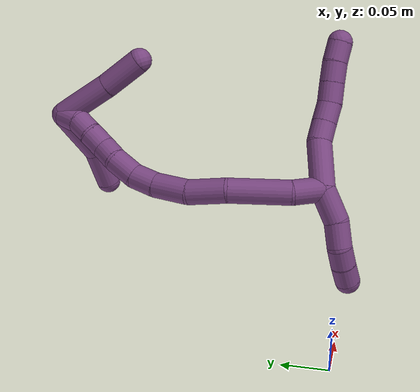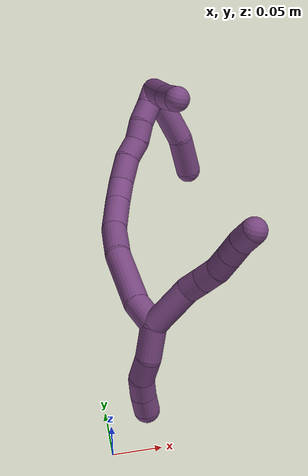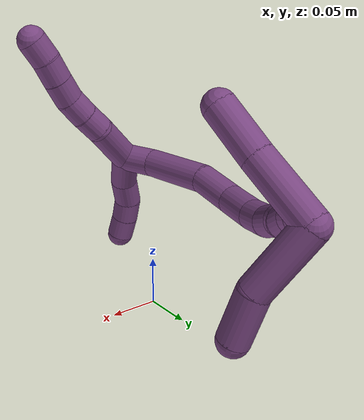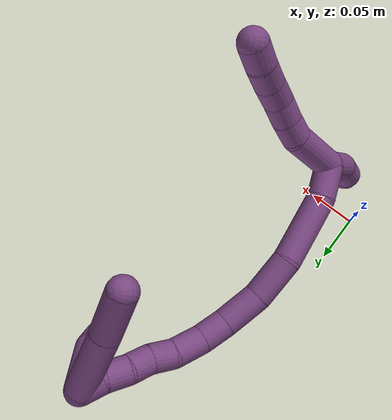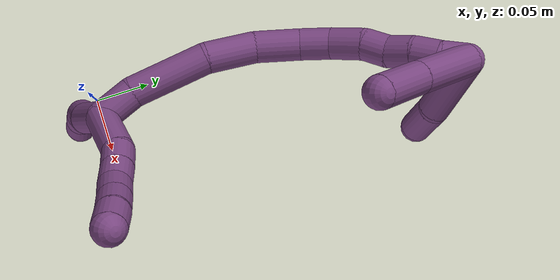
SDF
<sdf version="1.7">
 <world name="default">
  <model name="20">
   <static>0</static>
   <link name="20">
    <collision name="collision-cylinder-e_1_2_8">
     <pose>0.008928 -0.005448 0.021812 0.244774 0.378029 0.047051</pose>
     <geometry><cylinder><radius>0.0125</radius><length>0.04838</length></cylinder></geometry>
     <surface>
      <friction><ode><mu>1.16</mu><mu2>1.16</mu2><slip1>0</slip1><slip2>0</slip2></ode></friction>
      <contact><ode><kp>1e+06</kp><kd>1</kd><max_vel>0</max_vel><min_depth>0.001</min_depth></ode></contact>
     </surface>
    </collision>
    <visual name="visual-cylinder-e_1_2_8">
     <pose>0.008928 -0.005448 0.021812 0.244774 0.378029 0.047051</pose>
     <geometry><cylinder><radius>0.0125</radius><length>0.04838</length></cylinder></geometry>
     <material><ambient>0.478431 0.278431 0.509804 1</ambient></material>
    </visual>
    <collision name="collision-cylinder-e_2_8_9">
     <pose>0.021381 -0.016011 0.051505 0.575657 0.358822 0.107281</pose>
     <geometry><cylinder><radius>0.0125</radius><length>0.02007</length></cylinder></geometry>
     <surface>
      <friction><ode><mu>1.16</mu><mu2>1.16</mu2><slip1>0</slip1><slip2>0</slip2></ode></friction>
      <contact><ode><kp>1e+06</kp><kd>1</kd><max_vel>0</max_vel><min_depth>0.001</min_depth></ode></contact>
     </surface>
    </collision>
    <visual name="visual-cylinder-e_2_8_9">
     <pose>0.021381 -0.016011 0.051505 0.575657 0.358822 0.107281</pose>
     <geometry><cylinder><radius>0.0125</radius><length>0.02007</length></cylinder></geometry>
     <material><ambient>0.478431 0.278431 0.509804 1</ambient></material>
    </visual>
    <collision name="collision-cylinder-e_3_9_10">
     <pose>0.027798 -0.026658 0.067371 0.605948 0.289568 0.091093</pose>
     <geometry><cylinder><radius>0.0125</radius><length>0.02027</length></cylinder></geometry>
     <surface>
      <friction><ode><mu>1.16</mu><mu2>1.16</mu2><slip1>0</slip1><slip2>0</slip2></ode></friction>
      <contact><ode><kp>1e+06</kp><kd>1</kd><max_vel>0</max_vel><min_depth>0.001</min_depth></ode></contact>
     </surface>
    </collision>
    <visual name="visual-cylinder-e_3_9_10">
     <pose>0.027798 -0.026658 0.067371 0.605948 0.289568 0.091093</pose>
     <geometry><cylinder><radius>0.0125</radius><length>0.02027</length></cylinder></geometry>
     <material><ambient>0.478431 0.278431 0.509804 1</ambient></material>
    </visual>
    <collision name="collision-cylinder-e_4_10_11">
     <pose>0.032028 -0.036725 0.084612 0.455513 0.128862 0.029907</pose>
     <geometry><cylinder><radius>0.0125</radius><length>0.020788</length></cylinder></geometry>
     <surface>
      <friction><ode><mu>1.16</mu><mu2>1.16</mu2><slip1>0</slip1><slip2>0</slip2></ode></friction>
      <contact><ode><kp>1e+06</kp><kd>1</kd><max_vel>0</max_vel><min_depth>0.001</min_depth></ode></contact>
     </surface>
    </collision>
    <visual name="visual-cylinder-e_4_10_11">
     <pose>0.032028 -0.036725 0.084612 0.455513 0.128862 0.029907</pose>
     <geometry><cylinder><radius>0.0125</radius><length>0.020788</length></cylinder></geometry>
     <material><ambient>0.478431 0.278431 0.509804 1</ambient></material>
    </visual>
    <collision name="collision-cylinder-e_5_11_12">
     <pose>0.034298 -0.045961 0.10289 0.480349 0.091531 0.022431</pose>
     <geometry><cylinder><radius>0.0125</radius><length>0.020431</length></cylinder></geometry>
     <surface>
      <friction><ode><mu>1.16</mu><mu2>1.16</mu2><slip1>0</slip1><slip2>0</slip2></ode></friction>
      <contact><ode><kp>1e+06</kp><kd>1</kd><max_vel>0</max_vel><min_depth>0.001</min_depth></ode></contact>
     </surface>
    </collision>
    <visual name="visual-cylinder-e_5_11_12">
     <pose>0.034298 -0.045961 0.10289 0.480349 0.091531 0.022431</pose>
     <geometry><cylinder><radius>0.0125</radius><length>0.020431</length></cylinder></geometry>
     <material><ambient>0.478431 0.278431 0.509804 1</ambient></material>
    </visual>
    <collision name="collision-cylinder-e_6_12_6">
     <pose>0.036878 -0.056192 0.120116 0.593098 0.164927 0.050499</pose>
     <geometry><cylinder><radius>0.0125</radius><length>0.02006</length></cylinder></geometry>
     <surface>
      <friction><ode><mu>1.16</mu><mu2>1.16</mu2><slip1>0</slip1><slip2>0</slip2></ode></friction>
      <contact><ode><kp>1e+06</kp><kd>1</kd><max_vel>0</max_vel><min_depth>0.001</min_depth></ode></contact>
     </surface>
    </collision>
    <visual name="visual-cylinder-e_6_12_6">
     <pose>0.036878 -0.056192 0.120116 0.593098 0.164927 0.050499</pose>
     <geometry><cylinder><radius>0.0125</radius><length>0.02006</length></cylinder></geometry>
     <material><ambient>0.478431 0.278431 0.509804 1</ambient></material>
    </visual>
    <collision name="collision-cylinder-e_1_2_13">
     <pose>0.001607 -0.000804 -0.016939 3.09414 0.094457 2.21101</pose>
     <geometry><cylinder><radius>0.0125</radius><length>0.034067</length></cylinder></geometry>
     <surface>
      <friction><ode><mu>1.16</mu><mu2>1.16</mu2><slip1>0</slip1><slip2>0</slip2></ode></friction>
      <contact><ode><kp>1e+06</kp><kd>1</kd><max_vel>0</max_vel><min_depth>0.001</min_depth></ode></contact>
     </surface>
    </collision>
    <visual name="visual-cylinder-e_1_2_13">
     <pose>0.001607 -0.000804 -0.016939 3.09414 0.094457 2.21101</pose>
     <geometry><cylinder><radius>0.0125</radius><length>0.034067</length></cylinder></geometry>
     <material><ambient>0.478431 0.278431 0.509804 1</ambient></material>
    </visual>
    <collision name="collision-cylinder-e_2_13_14">
     <pose>0.004127 0.001327 -0.046352 -2.91051 0.071182 -0.595364</pose>
     <geometry><cylinder><radius>0.0125</radius><length>0.025697</length></cylinder></geometry>
     <surface>
      <friction><ode><mu>1.16</mu><mu2>1.16</mu2><slip1>0</slip1><slip2>0</slip2></ode></friction>
      <contact><ode><kp>1e+06</kp><kd>1</kd><max_vel>0</max_vel><min_depth>0.001</min_depth></ode></contact>
     </surface>
    </collision>
    <visual name="visual-cylinder-e_2_13_14">
     <pose>0.004127 0.001327 -0.046352 -2.91051 0.071182 -0.595364</pose>
     <geometry><cylinder><radius>0.0125</radius><length>0.025697</length></cylinder></geometry>
     <material><ambient>0.478431 0.278431 0.509804 1</ambient></material>
    </visual>
    <collision name="collision-cylinder-e_3_14_15">
     <pose>0.009026 0.005867 -0.067964 -2.9677 0.405791 -2.34007</pose>
     <geometry><cylinder><radius>0.0125</radius><length>0.020193</length></cylinder></geometry>
     <surface>
      <friction><ode><mu>1.16</mu><mu2>1.16</mu2><slip1>0</slip1><slip2>0</slip2></ode></friction>
      <contact><ode><kp>1e+06</kp><kd>1</kd><max_vel>0</max_vel><min_depth>0.001</min_depth></ode></contact>
     </surface>
    </collision>
    <visual name="visual-cylinder-e_3_14_15">
     <pose>0.009026 0.005867 -0.067964 -2.9677 0.405791 -2.34007</pose>
     <geometry><cylinder><radius>0.0125</radius><length>0.020193</length></cylinder></geometry>
     <material><ambient>0.478431 0.278431 0.509804 1</ambient></material>
    </visual>
    <collision name="collision-cylinder-e_4_15_5">
     <pose>0.017758 0.008654 -0.085848 -3.00719 0.493355 -2.61925</pose>
     <geometry><cylinder><radius>0.0125</radius><length>0.020043</length></cylinder></geometry>
     <surface>
      <friction><ode><mu>1.16</mu><mu2>1.16</mu2><slip1>0</slip1><slip2>0</slip2></ode></friction>
      <contact><ode><kp>1e+06</kp><kd>1</kd><max_vel>0</max_vel><min_depth>0.001</min_depth></ode></contact>
     </surface>
    </collision>
    <visual name="visual-cylinder-e_4_15_5">
     <pose>0.017758 0.008654 -0.085848 -3.00719 0.493355 -2.61925</pose>
     <geometry><cylinder><radius>0.0125</radius><length>0.020043</length></cylinder></geometry>
     <material><ambient>0.478431 0.278431 0.509804 1</ambient></material>
    </visual>
    <collision name="collision-cylinder-e_1_2_16">
     <pose>-0.005 0.013973 0.003647 -1.3155 -0.333297 0.258437</pose>
     <geometry><cylinder><radius>0.0125</radius><length>0.030564</length></cylinder></geometry>
     <surface>
      <friction><ode><mu>1.16</mu><mu2>1.16</mu2><slip1>0</slip1><slip2>0</slip2></ode></friction>
      <contact><ode><kp>1e+06</kp><kd>1</kd><max_vel>0</max_vel><min_depth>0.001</min_depth></ode></contact>
     </surface>
    </collision>
    <visual name="visual-cylinder-e_1_2_16">
     <pose>-0.005 0.013973 0.003647 -1.3155 -0.333297 0.258437</pose>
     <geometry><cylinder><radius>0.0125</radius><length>0.030564</length></cylinder></geometry>
     <material><ambient>0.478431 0.278431 0.509804 1</ambient></material>
    </visual>
    <collision name="collision-cylinder-e_2_16_17">
     <pose>-0.013464 0.056537 0.018848 -1.18674 -0.111875 0.075496</pose>
     <geometry><cylinder><radius>0.0125</radius><length>0.062064</length></cylinder></geometry>
     <surface>
      <friction><ode><mu>1.16</mu><mu2>1.16</mu2><slip1>0</slip1><slip2>0</slip2></ode></friction>
      <contact><ode><kp>1e+06</kp><kd>1</kd><max_vel>0</max_vel><min_depth>0.001</min_depth></ode></contact>
     </surface>
    </collision>
    <visual name="visual-cylinder-e_2_16_17">
     <pose>-0.013464 0.056537 0.018848 -1.18674 -0.111875 0.075496</pose>
     <geometry><cylinder><radius>0.0125</radius><length>0.062064</length></cylinder></geometry>
     <material><ambient>0.478431 0.278431 0.509804 1</ambient></material>
    </visual>
    <collision name="collision-cylinder-e_3_17_18">
     <pose>-0.014483 0.103845 0.035965 -1.28192 0.124578 -0.092993</pose>
     <geometry><cylinder><radius>0.0125</radius><length>0.039355</length></cylinder></geometry>
     <surface>
      <friction><ode><mu>1.16</mu><mu2>1.16</mu2><slip1>0</slip1><slip2>0</slip2></ode></friction>
      <contact><ode><kp>1e+06</kp><kd>1</kd><max_vel>0</max_vel><min_depth>0.001</min_depth></ode></contact>
     </surface>
    </collision>
    <visual name="visual-cylinder-e_3_17_18">
     <pose>-0.014483 0.103845 0.035965 -1.28192 0.124578 -0.092993</pose>
     <geometry><cylinder><radius>0.0125</radius><length>0.039355</length></cylinder></geometry>
     <material><ambient>0.478431 0.278431 0.509804 1</ambient></material>
    </visual>
    <collision name="collision-cylinder-e_4_18_19">
     <pose>-0.007754 0.137518 0.050246 -1.04305 0.242587 -0.139847</pose>
     <geometry><cylinder><radius>0.0125</radius><length>0.03567</length></cylinder></geometry>
     <surface>
      <friction><ode><mu>1.16</mu><mu2>1.16</mu2><slip1>0</slip1><slip2>0</slip2></ode></friction>
      <contact><ode><kp>1e+06</kp><kd>1</kd><max_vel>0</max_vel><min_depth>0.001</min_depth></ode></contact>
     </surface>
    </collision>
    <visual name="visual-cylinder-e_4_18_19">
     <pose>-0.007754 0.137518 0.050246 -1.04305 0.242587 -0.139847</pose>
     <geometry><cylinder><radius>0.0125</radius><length>0.03567</length></cylinder></geometry>
     <material><ambient>0.478431 0.278431 0.509804 1</ambient></material>
    </visual>
    <collision name="collision-cylinder-e_5_19_20">
     <pose>-0.000661 0.161515 0.066744 -0.860168 0.231264 -0.106461</pose>
     <geometry><cylinder><radius>0.0125</radius><length>0.024504</length></cylinder></geometry>
     <surface>
      <friction><ode><mu>1.16</mu><mu2>1.16</mu2><slip1>0</slip1><slip2>0</slip2></ode></friction>
      <contact><ode><kp>1e+06</kp><kd>1</kd><max_vel>0</max_vel><min_depth>0.001</min_depth></ode></contact>
     </surface>
    </collision>
    <visual name="visual-cylinder-e_5_19_20">
     <pose>-0.000661 0.161515 0.066744 -0.860168 0.231264 -0.106461</pose>
     <geometry><cylinder><radius>0.0125</radius><length>0.024504</length></cylinder></geometry>
     <material><ambient>0.478431 0.278431 0.509804 1</ambient></material>
    </visual>
    <collision name="collision-cylinder-e_6_20_21">
     <pose>0.004883 0.177763 0.085552 -0.578926 0.204768 -0.061181</pose>
     <geometry><cylinder><radius>0.0125</radius><length>0.026915</length></cylinder></geometry>
     <surface>
      <friction><ode><mu>1.16</mu><mu2>1.16</mu2><slip1>0</slip1><slip2>0</slip2></ode></friction>
      <contact><ode><kp>1e+06</kp><kd>1</kd><max_vel>0</max_vel><min_depth>0.001</min_depth></ode></contact>
     </surface>
    </collision>
    <visual name="visual-cylinder-e_6_20_21">
     <pose>0.004883 0.177763 0.085552 -0.578926 0.204768 -0.061181</pose>
     <geometry><cylinder><radius>0.0125</radius><length>0.026915</length></cylinder></geometry>
     <material><ambient>0.478431 0.278431 0.509804 1</ambient></material>
    </visual>
    <collision name="collision-cylinder-e_7_21_22">
     <pose>0.012124 0.189343 0.104533 -0.502608 0.46077 -0.120287</pose>
     <geometry><cylinder><radius>0.0125</radius><length>0.020261</length></cylinder></geometry>
     <surface>
      <friction><ode><mu>1.16</mu><mu2>1.16</mu2><slip1>0</slip1><slip2>0</slip2></ode></friction>
      <contact><ode><kp>1e+06</kp><kd>1</kd><max_vel>0</max_vel><min_depth>0.001</min_depth></ode></contact>
     </surface>
    </collision>
    <visual name="visual-cylinder-e_7_21_22">
     <pose>0.012124 0.189343 0.104533 -0.502608 0.46077 -0.120287</pose>
     <geometry><cylinder><radius>0.0125</radius><length>0.020261</length></cylinder></geometry>
     <material><ambient>0.478431 0.278431 0.509804 1</ambient></material>
    </visual>
    <collision name="collision-cylinder-e_8_22_23">
     <pose>0.018082 0.198174 0.121507 -0.459111 0.143408 -0.033565</pose>
     <geometry><cylinder><radius>0.0125</radius><length>0.020336</length></cylinder></geometry>
     <surface>
      <friction><ode><mu>1.16</mu><mu2>1.16</mu2><slip1>0</slip1><slip2>0</slip2></ode></friction>
      <contact><ode><kp>1e+06</kp><kd>1</kd><max_vel>0</max_vel><min_depth>0.001</min_depth></ode></contact>
     </surface>
    </collision>
    <visual name="visual-cylinder-e_8_22_23">
     <pose>0.018082 0.198174 0.121507 -0.459111 0.143408 -0.033565</pose>
     <geometry><cylinder><radius>0.0125</radius><length>0.020336</length></cylinder></geometry>
     <material><ambient>0.478431 0.278431 0.509804 1</ambient></material>
    </visual>
    <collision name="collision-cylinder-e_9_23_24">
     <pose>0.022951 0.207206 0.138883 -0.500765 0.344333 -0.088885</pose>
     <geometry><cylinder><radius>0.0125</radius><length>0.020235</length></cylinder></geometry>
     <surface>
      <friction><ode><mu>1.16</mu><mu2>1.16</mu2><slip1>0</slip1><slip2>0</slip2></ode></friction>
      <contact><ode><kp>1e+06</kp><kd>1</kd><max_vel>0</max_vel><min_depth>0.001</min_depth></ode></contact>
     </surface>
    </collision>
    <visual name="visual-cylinder-e_9_23_24">
     <pose>0.022951 0.207206 0.138883 -0.500765 0.344333 -0.088885</pose>
     <geometry><cylinder><radius>0.0125</radius><length>0.020235</length></cylinder></geometry>
     <material><ambient>0.478431 0.278431 0.509804 1</ambient></material>
    </visual>
    <collision name="collision-cylinder-e_10_24_1">
     <pose>0.030044 0.218848 0.153356 -0.857396 0.374761 -0.172884</pose>
     <geometry><cylinder><radius>0.0125</radius><length>0.020096</length></cylinder></geometry>
     <surface>
      <friction><ode><mu>1.16</mu><mu2>1.16</mu2><slip1>0</slip1><slip2>0</slip2></ode></friction>
      <contact><ode><kp>1e+06</kp><kd>1</kd><max_vel>0</max_vel><min_depth>0.001</min_depth></ode></contact>
     </surface>
    </collision>
    <visual name="visual-cylinder-e_10_24_1">
     <pose>0.030044 0.218848 0.153356 -0.857396 0.374761 -0.172884</pose>
     <geometry><cylinder><radius>0.0125</radius><length>0.020096</length></cylinder></geometry>
     <material><ambient>0.478431 0.278431 0.509804 1</ambient></material>
    </visual>
    <collision name="collision-cylinder-e_1_1_25">
     <pose>0.029504 0.198274 0.164794 1.3807 -0.148704 -0.122891</pose>
     <geometry><cylinder><radius>0.0125</radius><length>0.056932</length></cylinder></geometry>
     <surface>
      <friction><ode><mu>1.16</mu><mu2>1.16</mu2><slip1>0</slip1><slip2>0</slip2></ode></friction>
      <contact><ode><kp>1e+06</kp><kd>1</kd><max_vel>0</max_vel><min_depth>0.001</min_depth></ode></contact>
     </surface>
    </collision>
    <visual name="visual-cylinder-e_1_1_25">
     <pose>0.029504 0.198274 0.164794 1.3807 -0.148704 -0.122891</pose>
     <geometry><cylinder><radius>0.0125</radius><length>0.056932</length></cylinder></geometry>
     <material><ambient>0.478431 0.278431 0.509804 1</ambient></material>
    </visual>
    <collision name="collision-cylinder-e_2_25_4">
     <pose>0.022002 0.15007 0.175611 1.3095 -0.153156 -0.117677</pose>
     <geometry><cylinder><radius>0.0125</radius><length>0.043068</length></cylinder></geometry>
     <surface>
      <friction><ode><mu>1.16</mu><mu2>1.16</mu2><slip1>0</slip1><slip2>0</slip2></ode></friction>
      <contact><ode><kp>1e+06</kp><kd>1</kd><max_vel>0</max_vel><min_depth>0.001</min_depth></ode></contact>
     </surface>
    </collision>
    <visual name="visual-cylinder-e_2_25_4">
     <pose>0.022002 0.15007 0.175611 1.3095 -0.153156 -0.117677</pose>
     <geometry><cylinder><radius>0.0125</radius><length>0.043068</length></cylinder></geometry>
     <material><ambient>0.478431 0.278431 0.509804 1</ambient></material>
    </visual>
    <collision name="collision-cylinder-e_1_1_26">
     <pose>0.053324 0.221909 0.137539 2.96079 0.72112 2.66972</pose>
     <geometry><cylinder><radius>0.0125</radius><length>0.059379</length></cylinder></geometry>
     <surface>
      <friction><ode><mu>1.16</mu><mu2>1.16</mu2><slip1>0</slip1><slip2>0</slip2></ode></friction>
      <contact><ode><kp>1e+06</kp><kd>1</kd><max_vel>0</max_vel><min_depth>0.001</min_depth></ode></contact>
     </surface>
    </collision>
    <visual name="visual-cylinder-e_1_1_26">
     <pose>0.053324 0.221909 0.137539 2.96079 0.72112 2.66972</pose>
     <geometry><cylinder><radius>0.0125</radius><length>0.059379</length></cylinder></geometry>
     <material><ambient>0.478431 0.278431 0.509804 1</ambient></material>
    </visual>
    <collision name="collision-cylinder-e_2_26_3">
     <pose>0.083396 0.219932 0.09832 -3.0245 0.541598 -2.72546</pose>
     <geometry><cylinder><radius>0.0125</radius><length>0.040621</length></cylinder></geometry>
     <surface>
      <friction><ode><mu>1.16</mu><mu2>1.16</mu2><slip1>0</slip1><slip2>0</slip2></ode></friction>
      <contact><ode><kp>1e+06</kp><kd>1</kd><max_vel>0</max_vel><min_depth>0.001</min_depth></ode></contact>
     </surface>
    </collision>
    <visual name="visual-cylinder-e_2_26_3">
     <pose>0.083396 0.219932 0.09832 -3.0245 0.541598 -2.72546</pose>
     <geometry><cylinder><radius>0.0125</radius><length>0.040621</length></cylinder></geometry>
     <material><ambient>0.478431 0.278431 0.509804 1</ambient></material>
    </visual>
    <collision name="collision-sphere-3">
     <pose>0.093866 0.221966 0.081035 0 -0 0</pose>
     <geometry><sphere><radius>0.0125</radius></sphere></geometry>
     <surface>
      <friction><ode><mu>1.16</mu><mu2>1.16</mu2><slip1>0</slip1><slip2>0</slip2></ode></friction>
      <contact><ode><kp>1e+06</kp><kd>1</kd><max_vel>0</max_vel><min_depth>0.001</min_depth></ode></contact>
     </surface>
    </collision>
    <visual name="visual-sphere-3">
     <pose>0.093866 0.221966 0.081035 0 -0 0</pose>
     <geometry><sphere><radius>0.0125</radius></sphere></geometry>
     <material><ambient>0.478431 0.278431 0.509804 1</ambient></material>
    </visual>
    <collision name="collision-sphere-26">
     <pose>0.072926 0.217899 0.115604 0 -0 0</pose>
     <geometry><sphere><radius>0.0125</radius></sphere></geometry>
     <surface>
      <friction><ode><mu>1.16</mu><mu2>1.16</mu2><slip1>0</slip1><slip2>0</slip2></ode></friction>
      <contact><ode><kp>1e+06</kp><kd>1</kd><max_vel>0</max_vel><min_depth>0.001</min_depth></ode></contact>
     </surface>
    </collision>
    <visual name="visual-sphere-26">
     <pose>0.072926 0.217899 0.115604 0 -0 0</pose>
     <geometry><sphere><radius>0.0125</radius></sphere></geometry>
     <material><ambient>0.478431 0.278431 0.509804 1</ambient></material>
    </visual>
    <collision name="collision-sphere-4">
     <pose>0.018717 0.12951 0.181109 0 -0 0</pose>
     <geometry><sphere><radius>0.0125</radius></sphere></geometry>
     <surface>
      <friction><ode><mu>1.16</mu><mu2>1.16</mu2><slip1>0</slip1><slip2>0</slip2></ode></friction>
      <contact><ode><kp>1e+06</kp><kd>1</kd><max_vel>0</max_vel><min_depth>0.001</min_depth></ode></contact>
     </surface>
    </collision>
    <visual name="visual-sphere-4">
     <pose>0.018717 0.12951 0.181109 0 -0 0</pose>
     <geometry><sphere><radius>0.0125</radius></sphere></geometry>
     <material><ambient>0.478431 0.278431 0.509804 1</ambient></material>
    </visual>
    <collision name="collision-sphere-25">
     <pose>0.025287 0.170629 0.170114 0 -0 0</pose>
     <geometry><sphere><radius>0.0125</radius></sphere></geometry>
     <surface>
      <friction><ode><mu>1.16</mu><mu2>1.16</mu2><slip1>0</slip1><slip2>0</slip2></ode></friction>
      <contact><ode><kp>1e+06</kp><kd>1</kd><max_vel>0</max_vel><min_depth>0.001</min_depth></ode></contact>
     </surface>
    </collision>
    <visual name="visual-sphere-25">
     <pose>0.025287 0.170629 0.170114 0 -0 0</pose>
     <geometry><sphere><radius>0.0125</radius></sphere></geometry>
     <material><ambient>0.478431 0.278431 0.509804 1</ambient></material>
    </visual>
    <collision name="collision-sphere-1">
     <pose>0.033722 0.225919 0.159475 0 -0 0</pose>
     <geometry><sphere><radius>0.0125</radius></sphere></geometry>
     <surface>
      <friction><ode><mu>1.16</mu><mu2>1.16</mu2><slip1>0</slip1><slip2>0</slip2></ode></friction>
      <contact><ode><kp>1e+06</kp><kd>1</kd><max_vel>0</max_vel><min_depth>0.001</min_depth></ode></contact>
     </surface>
    </collision>
    <visual name="visual-sphere-1">
     <pose>0.033722 0.225919 0.159475 0 -0 0</pose>
     <geometry><sphere><radius>0.0125</radius></sphere></geometry>
     <material><ambient>0.478431 0.278431 0.509804 1</ambient></material>
    </visual>
    <collision name="collision-sphere-24">
     <pose>0.026366 0.211778 0.147237 0 -0 0</pose>
     <geometry><sphere><radius>0.0125</radius></sphere></geometry>
     <surface>
      <friction><ode><mu>1.16</mu><mu2>1.16</mu2><slip1>0</slip1><slip2>0</slip2></ode></friction>
      <contact><ode><kp>1e+06</kp><kd>1</kd><max_vel>0</max_vel><min_depth>0.001</min_depth></ode></contact>
     </surface>
    </collision>
    <visual name="visual-sphere-24">
     <pose>0.026366 0.211778 0.147237 0 -0 0</pose>
     <geometry><sphere><radius>0.0125</radius></sphere></geometry>
     <material><ambient>0.478431 0.278431 0.509804 1</ambient></material>
    </visual>
    <collision name="collision-sphere-23">
     <pose>0.019535 0.202634 0.130529 0 -0 0</pose>
     <geometry><sphere><radius>0.0125</radius></sphere></geometry>
     <surface>
      <friction><ode><mu>1.16</mu><mu2>1.16</mu2><slip1>0</slip1><slip2>0</slip2></ode></friction>
      <contact><ode><kp>1e+06</kp><kd>1</kd><max_vel>0</max_vel><min_depth>0.001</min_depth></ode></contact>
     </surface>
    </collision>
    <visual name="visual-sphere-23">
     <pose>0.019535 0.202634 0.130529 0 -0 0</pose>
     <geometry><sphere><radius>0.0125</radius></sphere></geometry>
     <material><ambient>0.478431 0.278431 0.509804 1</ambient></material>
    </visual>
    <collision name="collision-sphere-22">
     <pose>0.016629 0.193714 0.112485 0 -0 0</pose>
     <geometry><sphere><radius>0.0125</radius></sphere></geometry>
     <surface>
      <friction><ode><mu>1.16</mu><mu2>1.16</mu2><slip1>0</slip1><slip2>0</slip2></ode></friction>
      <contact><ode><kp>1e+06</kp><kd>1</kd><max_vel>0</max_vel><min_depth>0.001</min_depth></ode></contact>
     </surface>
    </collision>
    <visual name="visual-sphere-22">
     <pose>0.016629 0.193714 0.112485 0 -0 0</pose>
     <geometry><sphere><radius>0.0125</radius></sphere></geometry>
     <material><ambient>0.478431 0.278431 0.509804 1</ambient></material>
    </visual>
    <collision name="collision-sphere-21">
     <pose>0.00762 0.184972 0.096582 0 -0 0</pose>
     <geometry><sphere><radius>0.0125</radius></sphere></geometry>
     <surface>
      <friction><ode><mu>1.16</mu><mu2>1.16</mu2><slip1>0</slip1><slip2>0</slip2></ode></friction>
      <contact><ode><kp>1e+06</kp><kd>1</kd><max_vel>0</max_vel><min_depth>0.001</min_depth></ode></contact>
     </surface>
    </collision>
    <visual name="visual-sphere-21">
     <pose>0.00762 0.184972 0.096582 0 -0 0</pose>
     <geometry><sphere><radius>0.0125</radius></sphere></geometry>
     <material><ambient>0.478431 0.278431 0.509804 1</ambient></material>
    </visual>
    <collision name="collision-sphere-12">
     <pose>0.035231 -0.050662 0.111912 0 -0 0</pose>
     <geometry><sphere><radius>0.0125</radius></sphere></geometry>
     <surface>
      <friction><ode><mu>1.16</mu><mu2>1.16</mu2><slip1>0</slip1><slip2>0</slip2></ode></friction>
      <contact><ode><kp>1e+06</kp><kd>1</kd><max_vel>0</max_vel><min_depth>0.001</min_depth></ode></contact>
     </surface>
    </collision>
    <visual name="visual-sphere-12">
     <pose>0.035231 -0.050662 0.111912 0 -0 0</pose>
     <geometry><sphere><radius>0.0125</radius></sphere></geometry>
     <material><ambient>0.478431 0.278431 0.509804 1</ambient></material>
    </visual>
    <collision name="collision-sphere-11">
     <pose>0.033364 -0.04126 0.093868 0 -0 0</pose>
     <geometry><sphere><radius>0.0125</radius></sphere></geometry>
     <surface>
      <friction><ode><mu>1.16</mu><mu2>1.16</mu2><slip1>0</slip1><slip2>0</slip2></ode></friction>
      <contact><ode><kp>1e+06</kp><kd>1</kd><max_vel>0</max_vel><min_depth>0.001</min_depth></ode></contact>
     </surface>
    </collision>
    <visual name="visual-sphere-11">
     <pose>0.033364 -0.04126 0.093868 0 -0 0</pose>
     <geometry><sphere><radius>0.0125</radius></sphere></geometry>
     <material><ambient>0.478431 0.278431 0.509804 1</ambient></material>
    </visual>
    <collision name="collision-sphere-10">
     <pose>0.030692 -0.032191 0.075355 0 -0 0</pose>
     <geometry><sphere><radius>0.0125</radius></sphere></geometry>
     <surface>
      <friction><ode><mu>1.16</mu><mu2>1.16</mu2><slip1>0</slip1><slip2>0</slip2></ode></friction>
      <contact><ode><kp>1e+06</kp><kd>1</kd><max_vel>0</max_vel><min_depth>0.001</min_depth></ode></contact>
     </surface>
    </collision>
    <visual name="visual-sphere-10">
     <pose>0.030692 -0.032191 0.075355 0 -0 0</pose>
     <geometry><sphere><radius>0.0125</radius></sphere></geometry>
     <material><ambient>0.478431 0.278431 0.509804 1</ambient></material>
    </visual>
    <collision name="collision-sphere-9">
     <pose>0.024905 -0.021126 0.059387 0 -0 0</pose>
     <geometry><sphere><radius>0.0125</radius></sphere></geometry>
     <surface>
      <friction><ode><mu>1.16</mu><mu2>1.16</mu2><slip1>0</slip1><slip2>0</slip2></ode></friction>
      <contact><ode><kp>1e+06</kp><kd>1</kd><max_vel>0</max_vel><min_depth>0.001</min_depth></ode></contact>
     </surface>
    </collision>
    <visual name="visual-sphere-9">
     <pose>0.024905 -0.021126 0.059387 0 -0 0</pose>
     <geometry><sphere><radius>0.0125</radius></sphere></geometry>
     <material><ambient>0.478431 0.278431 0.509804 1</ambient></material>
    </visual>
    <collision name="collision-sphere-2">
     <geometry><sphere><radius>0.0125</radius></sphere></geometry>
     <surface>
      <friction><ode><mu>1.16</mu><mu2>1.16</mu2><slip1>0</slip1><slip2>0</slip2></ode></friction>
      <contact><ode><kp>1e+06</kp><kd>1</kd><max_vel>0</max_vel><min_depth>0.001</min_depth></ode></contact>
     </surface>
    </collision>
    <visual name="visual-sphere-2">
     <geometry><sphere><radius>0.0125</radius></sphere></geometry>
     <material><ambient>0.478431 0.278431 0.509804 1</ambient></material>
    </visual>
    <collision name="collision-sphere-19">
     <pose>-0.003469 0.152476 0.058964 0 -0 0</pose>
     <geometry><sphere><radius>0.0125</radius></sphere></geometry>
     <surface>
      <friction><ode><mu>1.16</mu><mu2>1.16</mu2><slip1>0</slip1><slip2>0</slip2></ode></friction>
      <contact><ode><kp>1e+06</kp><kd>1</kd><max_vel>0</max_vel><min_depth>0.001</min_depth></ode></contact>
     </surface>
    </collision>
    <visual name="visual-sphere-19">
     <pose>-0.003469 0.152476 0.058964 0 -0 0</pose>
     <geometry><sphere><radius>0.0125</radius></sphere></geometry>
     <material><ambient>0.478431 0.278431 0.509804 1</ambient></material>
    </visual>
    <collision name="collision-sphere-8">
     <pose>0.017857 -0.010896 0.043624 0 -0 0</pose>
     <geometry><sphere><radius>0.0125</radius></sphere></geometry>
     <surface>
      <friction><ode><mu>1.16</mu><mu2>1.16</mu2><slip1>0</slip1><slip2>0</slip2></ode></friction>
      <contact><ode><kp>1e+06</kp><kd>1</kd><max_vel>0</max_vel><min_depth>0.001</min_depth></ode></contact>
     </surface>
    </collision>
    <visual name="visual-sphere-8">
     <pose>0.017857 -0.010896 0.043624 0 -0 0</pose>
     <geometry><sphere><radius>0.0125</radius></sphere></geometry>
     <material><ambient>0.478431 0.278431 0.509804 1</ambient></material>
    </visual>
    <collision name="collision-sphere-6">
     <pose>0.038525 -0.061722 0.12832 0 -0 0</pose>
     <geometry><sphere><radius>0.0125</radius></sphere></geometry>
     <surface>
      <friction><ode><mu>1.16</mu><mu2>1.16</mu2><slip1>0</slip1><slip2>0</slip2></ode></friction>
      <contact><ode><kp>1e+06</kp><kd>1</kd><max_vel>0</max_vel><min_depth>0.001</min_depth></ode></contact>
     </surface>
    </collision>
    <visual name="visual-sphere-6">
     <pose>0.038525 -0.061722 0.12832 0 -0 0</pose>
     <geometry><sphere><radius>0.0125</radius></sphere></geometry>
     <material><ambient>0.478431 0.278431 0.509804 1</ambient></material>
    </visual>
    <collision name="collision-sphere-13">
     <pose>0.003213 -0.001609 -0.033877 0 -0 0</pose>
     <geometry><sphere><radius>0.0125</radius></sphere></geometry>
     <surface>
      <friction><ode><mu>1.16</mu><mu2>1.16</mu2><slip1>0</slip1><slip2>0</slip2></ode></friction>
      <contact><ode><kp>1e+06</kp><kd>1</kd><max_vel>0</max_vel><min_depth>0.001</min_depth></ode></contact>
     </surface>
    </collision>
    <visual name="visual-sphere-13">
     <pose>0.003213 -0.001609 -0.033877 0 -0 0</pose>
     <geometry><sphere><radius>0.0125</radius></sphere></geometry>
     <material><ambient>0.478431 0.278431 0.509804 1</ambient></material>
    </visual>
    <collision name="collision-sphere-14">
     <pose>0.005041 0.004262 -0.058828 0 -0 0</pose>
     <geometry><sphere><radius>0.0125</radius></sphere></geometry>
     <surface>
      <friction><ode><mu>1.16</mu><mu2>1.16</mu2><slip1>0</slip1><slip2>0</slip2></ode></friction>
      <contact><ode><kp>1e+06</kp><kd>1</kd><max_vel>0</max_vel><min_depth>0.001</min_depth></ode></contact>
     </surface>
    </collision>
    <visual name="visual-sphere-14">
     <pose>0.005041 0.004262 -0.058828 0 -0 0</pose>
     <geometry><sphere><radius>0.0125</radius></sphere></geometry>
     <material><ambient>0.478431 0.278431 0.509804 1</ambient></material>
    </visual>
    <collision name="collision-sphere-15">
     <pose>0.013012 0.007472 -0.077101 0 -0 0</pose>
     <geometry><sphere><radius>0.0125</radius></sphere></geometry>
     <surface>
      <friction><ode><mu>1.16</mu><mu2>1.16</mu2><slip1>0</slip1><slip2>0</slip2></ode></friction>
      <contact><ode><kp>1e+06</kp><kd>1</kd><max_vel>0</max_vel><min_depth>0.001</min_depth></ode></contact>
     </surface>
    </collision>
    <visual name="visual-sphere-15">
     <pose>0.013012 0.007472 -0.077101 0 -0 0</pose>
     <geometry><sphere><radius>0.0125</radius></sphere></geometry>
     <material><ambient>0.478431 0.278431 0.509804 1</ambient></material>
    </visual>
    <collision name="collision-sphere-5">
     <pose>0.022504 0.009837 -0.094595 0 -0 0</pose>
     <geometry><sphere><radius>0.0125</radius></sphere></geometry>
     <surface>
      <friction><ode><mu>1.16</mu><mu2>1.16</mu2><slip1>0</slip1><slip2>0</slip2></ode></friction>
      <contact><ode><kp>1e+06</kp><kd>1</kd><max_vel>0</max_vel><min_depth>0.001</min_depth></ode></contact>
     </surface>
    </collision>
    <visual name="visual-sphere-5">
     <pose>0.022504 0.009837 -0.094595 0 -0 0</pose>
     <geometry><sphere><radius>0.0125</radius></sphere></geometry>
     <material><ambient>0.478431 0.278431 0.509804 1</ambient></material>
    </visual>
    <collision name="collision-sphere-16">
     <pose>-0.009999 0.027946 0.007293 0 -0 0</pose>
     <geometry><sphere><radius>0.0125</radius></sphere></geometry>
     <surface>
      <friction><ode><mu>1.16</mu><mu2>1.16</mu2><slip1>0</slip1><slip2>0</slip2></ode></friction>
      <contact><ode><kp>1e+06</kp><kd>1</kd><max_vel>0</max_vel><min_depth>0.001</min_depth></ode></contact>
     </surface>
    </collision>
    <visual name="visual-sphere-16">
     <pose>-0.009999 0.027946 0.007293 0 -0 0</pose>
     <geometry><sphere><radius>0.0125</radius></sphere></geometry>
     <material><ambient>0.478431 0.278431 0.509804 1</ambient></material>
    </visual>
    <collision name="collision-sphere-17">
     <pose>-0.016928 0.085128 0.030403 0 -0 0</pose>
     <geometry><sphere><radius>0.0125</radius></sphere></geometry>
     <surface>
      <friction><ode><mu>1.16</mu><mu2>1.16</mu2><slip1>0</slip1><slip2>0</slip2></ode></friction>
      <contact><ode><kp>1e+06</kp><kd>1</kd><max_vel>0</max_vel><min_depth>0.001</min_depth></ode></contact>
     </surface>
    </collision>
    <visual name="visual-sphere-17">
     <pose>-0.016928 0.085128 0.030403 0 -0 0</pose>
     <geometry><sphere><radius>0.0125</radius></sphere></geometry>
     <material><ambient>0.478431 0.278431 0.509804 1</ambient></material>
    </visual>
    <collision name="collision-sphere-18">
     <pose>-0.012038 0.122561 0.041527 0 -0 0</pose>
     <geometry><sphere><radius>0.0125</radius></sphere></geometry>
     <surface>
      <friction><ode><mu>1.16</mu><mu2>1.16</mu2><slip1>0</slip1><slip2>0</slip2></ode></friction>
      <contact><ode><kp>1e+06</kp><kd>1</kd><max_vel>0</max_vel><min_depth>0.001</min_depth></ode></contact>
     </surface>
    </collision>
    <visual name="visual-sphere-18">
     <pose>-0.012038 0.122561 0.041527 0 -0 0</pose>
     <geometry><sphere><radius>0.0125</radius></sphere></geometry>
     <material><ambient>0.478431 0.278431 0.509804 1</ambient></material>
    </visual>
    <collision name="collision-sphere-20">
     <pose>0.002147 0.170554 0.074523 0 -0 0</pose>
     <geometry><sphere><radius>0.0125</radius></sphere></geometry>
     <surface>
      <friction><ode><mu>1.16</mu><mu2>1.16</mu2><slip1>0</slip1><slip2>0</slip2></ode></friction>
      <contact><ode><kp>1e+06</kp><kd>1</kd><max_vel>0</max_vel><min_depth>0.001</min_depth></ode></contact>
     </surface>
    </collision>
    <visual name="visual-sphere-20">
     <pose>0.002147 0.170554 0.074523 0 -0 0</pose>
     <geometry><sphere><radius>0.0125</radius></sphere></geometry>
     <material><ambient>0.478431 0.278431 0.509804 1</ambient></material>
    </visual>
    <inertial>
     <pose>0.01783 0.099111 0.070504 0 -0 0</pose>
     <mass>0.75</mass>
     <inertia><ixx>8.3e-05</ixx><ixy>0</ixy><ixz>0</ixz><iyy>8.4e-05</iyy><iyz>0</iyz><izz>-1.9e-05</izz></inertia>
    </inertial>
   </link>
   <pose>0.047495 0.020398 0.177457 -0.425852 0.391102 0.012362</pose>
  </model>
 </world>
</sdf>
